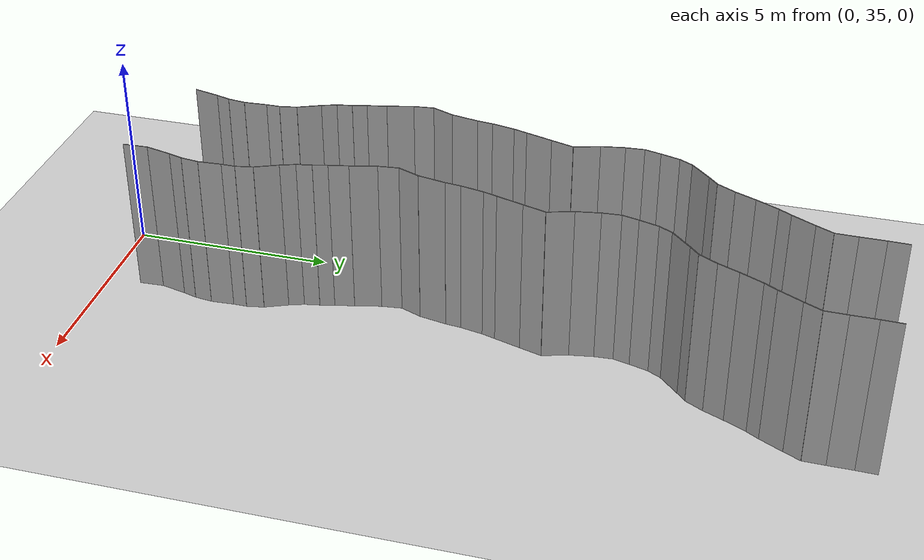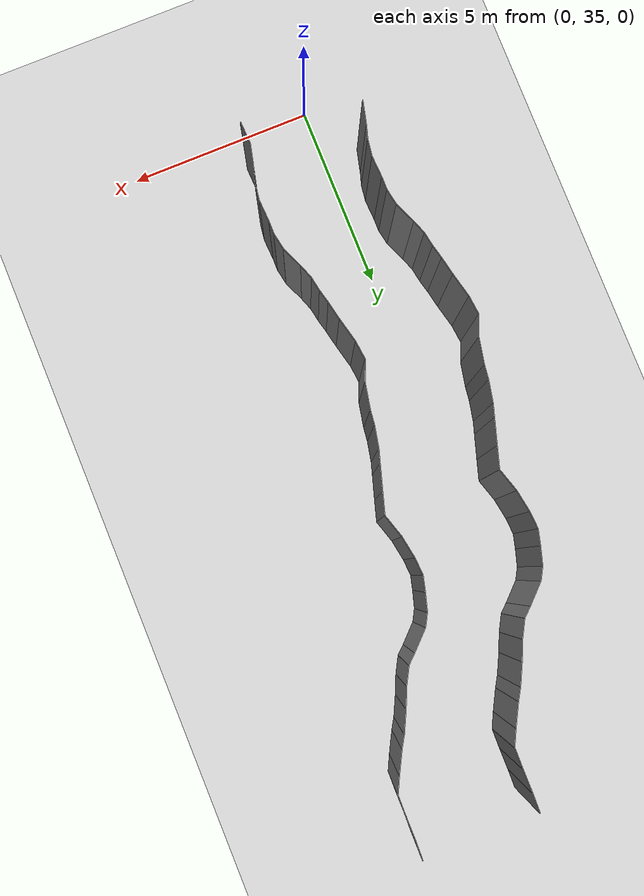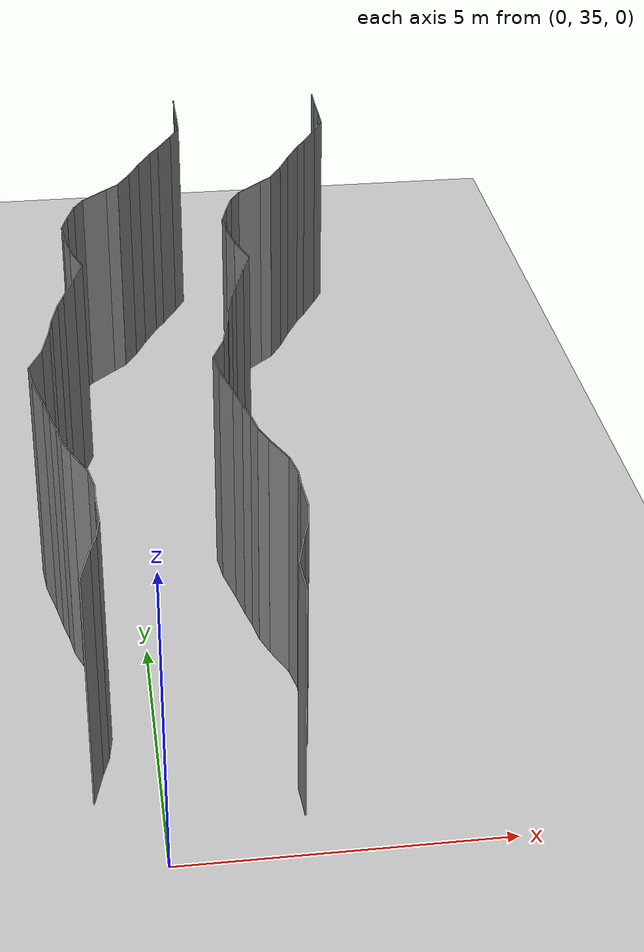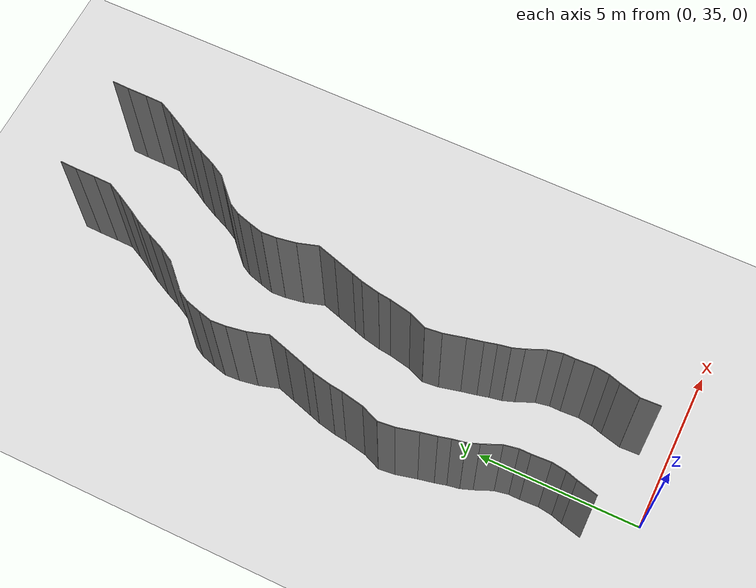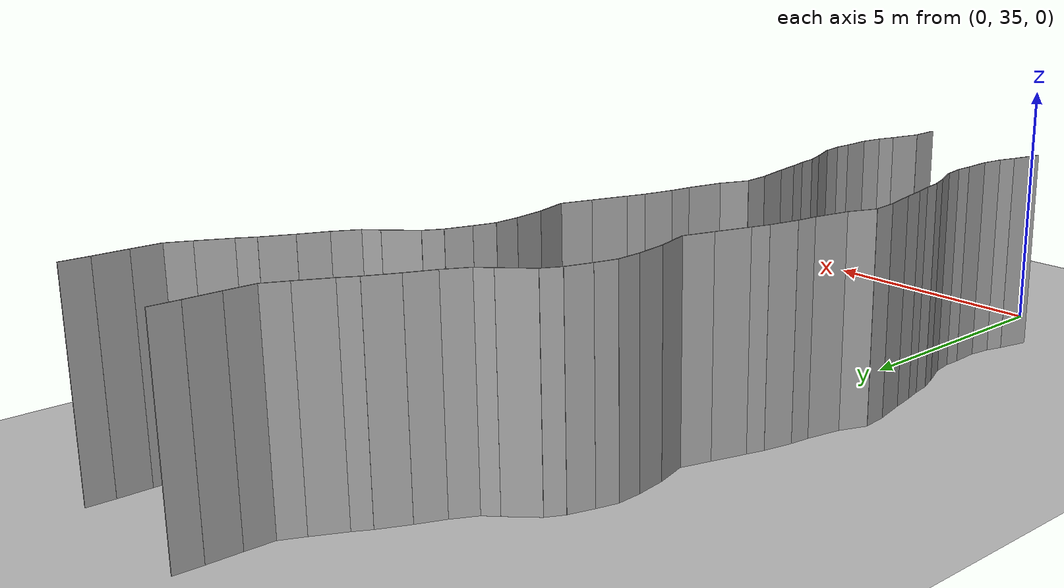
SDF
<sdf version="1.6">
 <world name="default">
  <model name="ground_plane">
   <static>1</static>
   <link name="link">
    <collision name="collision">
     <geometry><plane><normal>0 0 1</normal><size>200 200</size></plane></geometry>
     <surface><friction><ode><mu>100</mu><mu2>50</mu2></ode></friction></surface>
    </collision>
    <visual name="visual">
     <cast_shadows>0</cast_shadows>
     <geometry><plane><normal>0 0 1</normal><size>200 200</size></plane></geometry>
     <material>
      <script><uri>file://media/materials/scripts/gazebo.material</uri><name>Gazebo/Grey</name></script>
     </material>
    </visual>
   </link>
   <pose>0 100 0 0 -0 0</pose>
  </model>
  <model name="wall_149">
   <static>1</static>
   <pose>2.0192433593576036 36.12661065097995 2 0 0 0.039557189646517325</pose>
   <link name="link">
    <collision name="collision"><geometry><box><size>0.02 0.612151581699 4</size></box></geometry></collision>
    <visual name="visual">
     <material>
      <script><name>Gazebo/Grey</name><uri>file://media/materials/scripts/gazebo.material</uri></script>
     </material>
     <geometry><box><size>0.02 0.612151581699 4</size></box></geometry>
    </visual>
   </link>
  </model>
  <model name="wall_150">
   <static>1</static>
   <pose>-0.9142452974517005 36.75041396233746 2 0 0 -0.24238387777023654</pose>
   <link name="link">
    <collision name="collision"><geometry><box><size>0.02 0.655082933728 4</size></box></geometry></collision>
    <visual name="visual">
     <material>
      <script><name>Gazebo/Grey</name><uri>file://media/materials/scripts/gazebo.material</uri></script>
     </material>
     <geometry><box><size>0.02 0.655082933728 4</size></box></geometry>
    </visual>
   </link>
  </model>
  <model name="wall_151">
   <static>1</static>
   <pose>2.0857547025482996 36.75041396233746 2 0 0 -0.24238387777023654</pose>
   <link name="link">
    <collision name="collision"><geometry><box><size>0.02 0.655082933728 4</size></box></geometry></collision>
    <visual name="visual">
     <material>
      <script><name>Gazebo/Grey</name><uri>file://media/materials/scripts/gazebo.material</uri></script>
     </material>
     <geometry><box><size>0.02 0.655082933728 4</size></box></geometry>
    </visual>
   </link>
  </model>
  <model name="wall_152">
   <static>1</static>
   <pose>-0.7836860559475834 37.23986048519469 2 0 0 -0.2941280231674911</pose>
   <link name="link">
    <collision name="collision"><geometry><box><size>0.02 0.358348289426 4</size></box></geometry></collision>
    <visual name="visual">
     <material>
      <script><name>Gazebo/Grey</name><uri>file://media/materials/scripts/gazebo.material</uri></script>
     </material>
     <geometry><box><size>0.02 0.358348289426 4</size></box></geometry>
    </visual>
   </link>
  </model>
  <model name="wall_153">
   <static>1</static>
   <pose>2.2163139440524167 37.23986048519469 2 0 0 -0.2941280231674911</pose>
   <link name="link">
    <collision name="collision"><geometry><box><size>0.02 0.358348289426 4</size></box></geometry></collision>
    <visual name="visual">
     <material>
      <script><name>Gazebo/Grey</name><uri>file://media/materials/scripts/gazebo.material</uri></script>
     </material>
     <geometry><box><size>0.02 0.358348289426 4</size></box></geometry>
    </visual>
   </link>
  </model>
  <model name="wall_154">
   <static>1</static>
   <pose>-0.7006833152699552 37.63214923036254 2 0 0 -0.1397439226278167</pose>
   <link name="link">
    <collision name="collision"><geometry><box><size>0.02 0.445965770991 4</size></box></geometry></collision>
    <visual name="visual">
     <material>
      <script><name>Gazebo/Grey</name><uri>file://media/materials/scripts/gazebo.material</uri></script>
     </material>
     <geometry><box><size>0.02 0.445965770991 4</size></box></geometry>
    </visual>
   </link>
  </model>
  <model name="wall_155">
   <static>1</static>
   <pose>2.299316684730045 37.63214923036254 2 0 0 -0.1397439226278167</pose>
   <link name="link">
    <collision name="collision"><geometry><box><size>0.02 0.445965770991 4</size></box></geometry></collision>
    <visual name="visual">
     <material>
      <script><name>Gazebo/Grey</name><uri>file://media/materials/scripts/gazebo.material</uri></script>
     </material>
     <geometry><box><size>0.02 0.445965770991 4</size></box></geometry>
    </visual>
   </link>
  </model>
  <model name="wall_156">
   <static>1</static>
   <pose>-0.6842774030979801 38.14080958492552 2 0 0 0.050861815035771495</pose>
   <link name="link">
    <collision name="collision"><geometry><box><size>0.02 0.576447800007 4</size></box></geometry></collision>
    <visual name="visual">
     <material>
      <script><name>Gazebo/Grey</name><uri>file://media/materials/scripts/gazebo.material</uri></script>
     </material>
     <geometry><box><size>0.02 0.576447800007 4</size></box></geometry>
    </visual>
   </link>
  </model>
  <model name="wall_157">
   <static>1</static>
   <pose>2.31572259690202 38.14080958492552 2 0 0 0.050861815035771495</pose>
   <link name="link">
    <collision name="collision"><geometry><box><size>0.02 0.576447800007 4</size></box></geometry></collision>
    <visual name="visual">
     <material>
      <script><name>Gazebo/Grey</name><uri>file://media/materials/scripts/gazebo.material</uri></script>
     </material>
     <geometry><box><size>0.02 0.576447800007 4</size></box></geometry>
    </visual>
   </link>
  </model>
  <model name="wall_158">
   <static>1</static>
   <pose>-0.6976962503050346 38.59774978957099 2 0 0 -0.007300306962798818</pose>
   <link name="link">
    <collision name="collision"><geometry><box><size>0.02 0.338187073664 4</size></box></geometry></collision>
    <visual name="visual">
     <material>
      <script><name>Gazebo/Grey</name><uri>file://media/materials/scripts/gazebo.material</uri></script>
     </material>
     <geometry><box><size>0.02 0.338187073664 4</size></box></geometry>
    </visual>
   </link>
  </model>
  <model name="wall_159">
   <static>1</static>
   <pose>2.3023037496949654 38.59774978957099 2 0 0 -0.007300306962798818</pose>
   <link name="link">
    <collision name="collision"><geometry><box><size>0.02 0.338187073664 4</size></box></geometry></collision>
    <visual name="visual">
     <material>
      <script><name>Gazebo/Grey</name><uri>file://media/materials/scripts/gazebo.material</uri></script>
     </material>
     <geometry><box><size>0.02 0.338187073664 4</size></box></geometry>
    </visual>
   </link>
  </model>
  <model name="wall_160">
   <static>1</static>
   <pose>-0.7359153960441842 38.9803949675211 2 0 0 0.18268582352872226</pose>
   <link name="link">
    <collision name="collision"><geometry><box><size>0.02 0.434340014536 4</size></box></geometry></collision>
    <visual name="visual">
     <material>
      <script><name>Gazebo/Grey</name><uri>file://media/materials/scripts/gazebo.material</uri></script>
     </material>
     <geometry><box><size>0.02 0.434340014536 4</size></box></geometry>
    </visual>
   </link>
  </model>
  <model name="wall_161">
   <static>1</static>
   <pose>2.2640846039558156 38.9803949675211 2 0 0 0.18268582352872226</pose>
   <link name="link">
    <collision name="collision"><geometry><box><size>0.02 0.434340014536 4</size></box></geometry></collision>
    <visual name="visual">
     <material>
      <script><name>Gazebo/Grey</name><uri>file://media/materials/scripts/gazebo.material</uri></script>
     </material>
     <geometry><box><size>0.02 0.434340014536 4</size></box></geometry>
    </visual>
   </link>
  </model>
  <model name="wall_162">
   <static>1</static>
   <pose>-0.8949635153603994 39.47143708258466 2 0 0 0.40693592312433097</pose>
   <link name="link">
    <collision name="collision"><geometry><box><size>0.02 0.604322161872 4</size></box></geometry></collision>
    <visual name="visual">
     <material>
      <script><name>Gazebo/Grey</name><uri>file://media/materials/scripts/gazebo.material</uri></script>
     </material>
     <geometry><box><size>0.02 0.604322161872 4</size></box></geometry>
    </visual>
   </link>
  </model>
  <model name="wall_163">
   <static>1</static>
   <pose>2.1050364846396006 39.47143708258466 2 0 0 0.40693592312433097</pose>
   <link name="link">
    <collision name="collision"><geometry><box><size>0.02 0.604322161872 4</size></box></geometry></collision>
    <visual name="visual">
     <material>
      <script><name>Gazebo/Grey</name><uri>file://media/materials/scripts/gazebo.material</uri></script>
     </material>
     <geometry><box><size>0.02 0.604322161872 4</size></box></geometry>
    </visual>
   </link>
  </model>
  <model name="wall_164">
   <static>1</static>
   <pose>-1.0796892543624659 39.930081267699144 2 0 0 0.3451363887098022</pose>
   <link name="link">
    <collision name="collision"><geometry><box><size>0.02 0.385021409277 4</size></box></geometry></collision>
    <visual name="visual">
     <material>
      <script><name>Gazebo/Grey</name><uri>file://media/materials/scripts/gazebo.material</uri></script>
     </material>
     <geometry><box><size>0.02 0.385021409277 4</size></box></geometry>
    </visual>
   </link>
  </model>
  <model name="wall_165">
   <static>1</static>
   <pose>1.9203107456375341 39.930081267699144 2 0 0 0.3451363887098022</pose>
   <link name="link">
    <collision name="collision"><geometry><box><size>0.02 0.385021409277 4</size></box></geometry></collision>
    <visual name="visual">
     <material>
      <script><name>Gazebo/Grey</name><uri>file://media/materials/scripts/gazebo.material</uri></script>
     </material>
     <geometry><box><size>0.02 0.385021409277 4</size></box></geometry>
    </visual>
   </link>
  </model>
  <model name="wall_166">
   <static>1</static>
   <pose>-1.1790726796468258 40.30030731999518 2 0 0 0.17921992695728503</pose>
   <link name="link">
    <collision name="collision"><geometry><box><size>0.02 0.384290837839 4</size></box></geometry></collision>
    <visual name="visual">
     <material>
      <script><name>Gazebo/Grey</name><uri>file://media/materials/scripts/gazebo.material</uri></script>
     </material>
     <geometry><box><size>0.02 0.384290837839 4</size></box></geometry>
    </visual>
   </link>
  </model>
  <model name="wall_167">
   <static>1</static>
   <pose>1.8209273203531742 40.30030731999518 2 0 0 0.17921992695728503</pose>
   <link name="link">
    <collision name="collision"><geometry><box><size>0.02 0.384290837839 4</size></box></geometry></collision>
    <visual name="visual">
     <material>
      <script><name>Gazebo/Grey</name><uri>file://media/materials/scripts/gazebo.material</uri></script>
     </material>
     <geometry><box><size>0.02 0.384290837839 4</size></box></geometry>
    </visual>
   </link>
  </model>
  <model name="wall_168">
   <static>1</static>
   <pose>-1.258138026906627 40.66767501821733 2 0 0 0.2462353457118557</pose>
   <link name="link">
    <collision name="collision"><geometry><box><size>0.02 0.367690391826 4</size></box></geometry></collision>
    <visual name="visual">
     <material>
      <script><name>Gazebo/Grey</name><uri>file://media/materials/scripts/gazebo.material</uri></script>
     </material>
     <geometry><box><size>0.02 0.367690391826 4</size></box></geometry>
    </visual>
   </link>
  </model>
  <model name="wall_169">
   <static>1</static>
   <pose>1.741861973093373 40.66767501821733 2 0 0 0.2462353457118557</pose>
   <link name="link">
    <collision name="collision"><geometry><box><size>0.02 0.367690391826 4</size></box></geometry></collision>
    <visual name="visual">
     <material>
      <script><name>Gazebo/Grey</name><uri>file://media/materials/scripts/gazebo.material</uri></script>
     </material>
     <geometry><box><size>0.02 0.367690391826 4</size></box></geometry>
    </visual>
   </link>
  </model>
  <model name="wall_170">
   <static>1</static>
   <pose>-1.3530703165309805 41.08619606670605 2 0 0 0.20568700875479912</pose>
   <link name="link">
    <collision name="collision"><geometry><box><size>0.02 0.490787734284 4</size></box></geometry></collision>
    <visual name="visual">
     <material>
      <script><name>Gazebo/Grey</name><uri>file://media/materials/scripts/gazebo.material</uri></script>
     </material>
     <geometry><box><size>0.02 0.490787734284 4</size></box></geometry>
    </visual>
   </link>
  </model>
  <model name="wall_171">
   <static>1</static>
   <pose>1.6469296834690195 41.08619606670605 2 0 0 0.20568700875479912</pose>
   <link name="link">
    <collision name="collision"><geometry><box><size>0.02 0.490787734284 4</size></box></geometry></collision>
    <visual name="visual">
     <material>
      <script><name>Gazebo/Grey</name><uri>file://media/materials/scripts/gazebo.material</uri></script>
     </material>
     <geometry><box><size>0.02 0.490787734284 4</size></box></geometry>
    </visual>
   </link>
  </model>
  <model name="wall_172">
   <static>1</static>
   <pose>-1.4822522271594232 41.65269254033354 2 0 0 0.23773661303787055</pose>
   <link name="link">
    <collision name="collision"><geometry><box><size>0.02 0.671435713187 4</size></box></geometry></collision>
    <visual name="visual">
     <material>
      <script><name>Gazebo/Grey</name><uri>file://media/materials/scripts/gazebo.material</uri></script>
     </material>
     <geometry><box><size>0.02 0.671435713187 4</size></box></geometry>
    </visual>
   </link>
  </model>
  <model name="wall_173">
   <static>1</static>
   <pose>1.5177477728405768 41.65269254033354 2 0 0 0.23773661303787055</pose>
   <link name="link">
    <collision name="collision"><geometry><box><size>0.02 0.671435713187 4</size></box></geometry></collision>
    <visual name="visual">
     <material>
      <script><name>Gazebo/Grey</name><uri>file://media/materials/scripts/gazebo.material</uri></script>
     </material>
     <geometry><box><size>0.02 0.671435713187 4</size></box></geometry>
    </visual>
   </link>
  </model>
  <model name="wall_174">
   <static>1</static>
   <pose>-1.5881222332345402 42.23025512956287 2 0 0 0.10627782832516085</pose>
   <link name="link">
    <collision name="collision"><geometry><box><size>0.02 0.505426305799 4</size></box></geometry></collision>
    <visual name="visual">
     <material>
      <script><name>Gazebo/Grey</name><uri>file://media/materials/scripts/gazebo.material</uri></script>
     </material>
     <geometry><box><size>0.02 0.505426305799 4</size></box></geometry>
    </visual>
   </link>
  </model>
  <model name="wall_175">
   <static>1</static>
   <pose>1.4118777667654598 42.23025512956287 2 0 0 0.10627782832516085</pose>
   <link name="link">
    <collision name="collision"><geometry><box><size>0.02 0.505426305799 4</size></box></geometry></collision>
    <visual name="visual">
     <material>
      <script><name>Gazebo/Grey</name><uri>file://media/materials/scripts/gazebo.material</uri></script>
     </material>
     <geometry><box><size>0.02 0.505426305799 4</size></box></geometry>
    </visual>
   </link>
  </model>
  <model name="wall_176">
   <static>1</static>
   <pose>-1.5063852420950892 42.74527373560335 2 0 0 -0.3904417588533653</pose>
   <link name="link">
    <collision name="collision"><geometry><box><size>0.02 0.570389546399 4</size></box></geometry></collision>
    <visual name="visual">
     <material>
      <script><name>Gazebo/Grey</name><uri>file://media/materials/scripts/gazebo.material</uri></script>
     </material>
     <geometry><box><size>0.02 0.570389546399 4</size></box></geometry>
    </visual>
   </link>
  </model>
  <model name="wall_177">
   <static>1</static>
   <pose>1.4936147579049108 42.74527373560335 2 0 0 -0.3904417588533653</pose>
   <link name="link">
    <collision name="collision"><geometry><box><size>0.02 0.570389546399 4</size></box></geometry></collision>
    <visual name="visual">
     <material>
      <script><name>Gazebo/Grey</name><uri>file://media/materials/scripts/gazebo.material</uri></script>
     </material>
     <geometry><box><size>0.02 0.570389546399 4</size></box></geometry>
    </visual>
   </link>
  </model>
  <model name="wall_178">
   <static>1</static>
   <pose>-1.3299842624701264 43.35047527671578 2 0 0 -0.1961637817364554</pose>
   <link name="link">
    <collision name="collision"><geometry><box><size>0.02 0.696294351351 4</size></box></geometry></collision>
    <visual name="visual">
     <material>
      <script><name>Gazebo/Grey</name><uri>file://media/materials/scripts/gazebo.material</uri></script>
     </material>
     <geometry><box><size>0.02 0.696294351351 4</size></box></geometry>
    </visual>
   </link>
  </model>
  <model name="wall_179">
   <static>1</static>
   <pose>1.6700157375298736 43.35047527671578 2 0 0 -0.1961637817364554</pose>
   <link name="link">
    <collision name="collision"><geometry><box><size>0.02 0.696294351351 4</size></box></geometry></collision>
    <visual name="visual">
     <material>
      <script><name>Gazebo/Grey</name><uri>file://media/materials/scripts/gazebo.material</uri></script>
     </material>
     <geometry><box><size>0.02 0.696294351351 4</size></box></geometry>
    </visual>
   </link>
  </model>
  <model name="wall_180">
   <static>1</static>
   <pose>-1.239160466446554 43.88385552369766 2 0 0 -0.11910981625085444</pose>
   <link name="link">
    <collision name="collision"><geometry><box><size>0.02 0.386558865191 4</size></box></geometry></collision>
    <visual name="visual">
     <material>
      <script><name>Gazebo/Grey</name><uri>file://media/materials/scripts/gazebo.material</uri></script>
     </material>
     <geometry><box><size>0.02 0.386558865191 4</size></box></geometry>
    </visual>
   </link>
  </model>
  <model name="wall_181">
   <static>1</static>
   <pose>1.760839533553446 43.88385552369766 2 0 0 -0.11910981625085444</pose>
   <link name="link">
    <collision name="collision"><geometry><box><size>0.02 0.386558865191 4</size></box></geometry></collision>
    <visual name="visual">
     <material>
      <script><name>Gazebo/Grey</name><uri>file://media/materials/scripts/gazebo.material</uri></script>
     </material>
     <geometry><box><size>0.02 0.386558865191 4</size></box></geometry>
    </visual>
   </link>
  </model>
  <model name="wall_182">
   <static>1</static>
   <pose>-1.1572454723998697 44.36001333714651 2 0 0 -0.20448357314298446</pose>
   <link name="link">
    <collision name="collision"><geometry><box><size>0.02 0.580591662795 4</size></box></geometry></collision>
    <visual name="visual">
     <material>
      <script><name>Gazebo/Grey</name><uri>file://media/materials/scripts/gazebo.material</uri></script>
     </material>
     <geometry><box><size>0.02 0.580591662795 4</size></box></geometry>
    </visual>
   </link>
  </model>
  <model name="wall_183">
   <static>1</static>
   <pose>1.8427545276001303 44.36001333714651 2 0 0 -0.20448357314298446</pose>
   <link name="link">
    <collision name="collision"><geometry><box><size>0.02 0.580591662795 4</size></box></geometry></collision>
    <visual name="visual">
     <material>
      <script><name>Gazebo/Grey</name><uri>file://media/materials/scripts/gazebo.material</uri></script>
     </material>
     <geometry><box><size>0.02 0.580591662795 4</size></box></geometry>
    </visual>
   </link>
  </model>
  <model name="wall_184">
   <static>1</static>
   <pose>-1.0467105979649969 44.81242326293628 2 0 0 -0.29765545168526164</pose>
   <link name="link">
    <collision name="collision"><geometry><box><size>0.02 0.35179377073 4</size></box></geometry></collision>
    <visual name="visual">
     <material>
      <script><name>Gazebo/Grey</name><uri>file://media/materials/scripts/gazebo.material</uri></script>
     </material>
     <geometry><box><size>0.02 0.35179377073 4</size></box></geometry>
    </visual>
   </link>
  </model>
  <model name="wall_185">
   <static>1</static>
   <pose>1.9532894020350031 44.81242326293628 2 0 0 -0.29765545168526164</pose>
   <link name="link">
    <collision name="collision"><geometry><box><size>0.02 0.35179377073 4</size></box></geometry></collision>
    <visual name="visual">
     <material>
      <script><name>Gazebo/Grey</name><uri>file://media/materials/scripts/gazebo.material</uri></script>
     </material>
     <geometry><box><size>0.02 0.35179377073 4</size></box></geometry>
    </visual>
   </link>
  </model>
  <model name="wall_186">
   <static>1</static>
   <pose>-0.8949282345790525 45.30904628388181 2 0 0 -0.29607891492868527</pose>
   <link name="link">
    <collision name="collision"><geometry><box><size>0.02 0.686806173232 4</size></box></geometry></collision>
    <visual name="visual">
     <material>
      <script><name>Gazebo/Grey</name><uri>file://media/materials/scripts/gazebo.material</uri></script>
     </material>
     <geometry><box><size>0.02 0.686806173232 4</size></box></geometry>
    </visual>
   </link>
  </model>
  <model name="wall_187">
   <static>1</static>
   <pose>2.1050717654209476 45.30904628388181 2 0 0 -0.29607891492868527</pose>
   <link name="link">
    <collision name="collision"><geometry><box><size>0.02 0.686806173232 4</size></box></geometry></collision>
    <visual name="visual">
     <material>
      <script><name>Gazebo/Grey</name><uri>file://media/materials/scripts/gazebo.material</uri></script>
     </material>
     <geometry><box><size>0.02 0.686806173232 4</size></box></geometry>
    </visual>
   </link>
  </model>
  <model name="wall_188">
   <static>1</static>
   <pose>-0.7104861129719291 45.91787787526945 2 0 0 -0.291900158878294</pose>
   <link name="link">
    <collision name="collision"><geometry><box><size>0.02 0.58550913108 4</size></box></geometry></collision>
    <visual name="visual">
     <material>
      <script><name>Gazebo/Grey</name><uri>file://media/materials/scripts/gazebo.material</uri></script>
     </material>
     <geometry><box><size>0.02 0.58550913108 4</size></box></geometry>
    </visual>
   </link>
  </model>
  <model name="wall_189">
   <static>1</static>
   <pose>2.289513887028071 45.91787787526945 2 0 0 -0.291900158878294</pose>
   <link name="link">
    <collision name="collision"><geometry><box><size>0.02 0.58550913108 4</size></box></geometry></collision>
    <visual name="visual">
     <material>
      <script><name>Gazebo/Grey</name><uri>file://media/materials/scripts/gazebo.material</uri></script>
     </material>
     <geometry><box><size>0.02 0.58550913108 4</size></box></geometry>
    </visual>
   </link>
  </model>
  <model name="wall_190">
   <static>1</static>
   <pose>-0.7214859873936521 46.50879880992772 2 0 0 0.2975946516114795</pose>
   <link name="link">
    <collision name="collision"><geometry><box><size>0.02 0.649656419995 4</size></box></geometry></collision>
    <visual name="visual">
     <material>
      <script><name>Gazebo/Grey</name><uri>file://media/materials/scripts/gazebo.material</uri></script>
     </material>
     <geometry><box><size>0.02 0.649656419995 4</size></box></geometry>
    </visual>
   </link>
  </model>
  <model name="wall_191">
   <static>1</static>
   <pose>2.278514012606348 46.50879880992772 2 0 0 0.2975946516114795</pose>
   <link name="link">
    <collision name="collision"><geometry><box><size>0.02 0.649656419995 4</size></box></geometry></collision>
    <visual name="visual">
     <material>
      <script><name>Gazebo/Grey</name><uri>file://media/materials/scripts/gazebo.material</uri></script>
     </material>
     <geometry><box><size>0.02 0.649656419995 4</size></box></geometry>
    </visual>
   </link>
  </model>
  <model name="wall_192">
   <static>1</static>
   <pose>-0.8651848595774441 47.11142225094223 2 0 0 0.1643937549513063</pose>
   <link name="link">
    <collision name="collision"><geometry><box><size>0.02 0.592129638915 4</size></box></geometry></collision>
    <visual name="visual">
     <material>
      <script><name>Gazebo/Grey</name><uri>file://media/materials/scripts/gazebo.material</uri></script>
     </material>
     <geometry><box><size>0.02 0.592129638915 4</size></box></geometry>
    </visual>
   </link>
  </model>
  <model name="wall_193">
   <static>1</static>
   <pose>2.134815140422556 47.11142225094223 2 0 0 0.1643937549513063</pose>
   <link name="link">
    <collision name="collision"><geometry><box><size>0.02 0.592129638915 4</size></box></geometry></collision>
    <visual name="visual">
     <material>
      <script><name>Gazebo/Grey</name><uri>file://media/materials/scripts/gazebo.material</uri></script>
     </material>
     <geometry><box><size>0.02 0.592129638915 4</size></box></geometry>
    </visual>
   </link>
  </model>
  <model name="wall_194">
   <static>1</static>
   <pose>-0.9272226549811876 47.632808463098094 2 0 0 0.05917525719488259</pose>
   <link name="link">
    <collision name="collision"><geometry><box><size>0.02 0.459430185671 4</size></box></geometry></collision>
    <visual name="visual">
     <material>
      <script><name>Gazebo/Grey</name><uri>file://media/materials/scripts/gazebo.material</uri></script>
     </material>
     <geometry><box><size>0.02 0.459430185671 4</size></box></geometry>
    </visual>
   </link>
  </model>
  <model name="wall_195">
   <static>1</static>
   <pose>2.0727773450188125 47.632808463098094 2 0 0 0.05917525719488259</pose>
   <link name="link">
    <collision name="collision"><geometry><box><size>0.02 0.459430185671 4</size></box></geometry></collision>
    <visual name="visual">
     <material>
      <script><name>Gazebo/Grey</name><uri>file://media/materials/scripts/gazebo.material</uri></script>
     </material>
     <geometry><box><size>0.02 0.459430185671 4</size></box></geometry>
    </visual>
   </link>
  </model>
  <model name="wall_196">
   <static>1</static>
   <pose>-0.8890327732973499 48.06315812022171 2 0 0 -0.252064415455184</pose>
   <link name="link">
    <collision name="collision"><geometry><box><size>0.02 0.41519356722 4</size></box></geometry></collision>
    <visual name="visual">
     <material>
      <script><name>Gazebo/Grey</name><uri>file://media/materials/scripts/gazebo.material</uri></script>
     </material>
     <geometry><box><size>0.02 0.41519356722 4</size></box></geometry>
    </visual>
   </link>
  </model>
  <model name="wall_197">
   <static>1</static>
   <pose>2.11096722670265 48.06315812022171 2 0 0 -0.252064415455184</pose>
   <link name="link">
    <collision name="collision"><geometry><box><size>0.02 0.41519356722 4</size></box></geometry></collision>
    <visual name="visual">
     <material>
      <script><name>Gazebo/Grey</name><uri>file://media/materials/scripts/gazebo.material</uri></script>
     </material>
     <geometry><box><size>0.02 0.41519356722 4</size></box></geometry>
    </visual>
   </link>
  </model>
  <model name="wall_198">
   <static>1</static>
   <pose>-0.7677498701748449 48.49946676548275 2 0 0 -0.287263165512431</pose>
   <link name="link">
    <collision name="collision"><geometry><box><size>0.02 0.49064939515 4</size></box></geometry></collision>
    <visual name="visual">
     <material>
      <script><name>Gazebo/Grey</name><uri>file://media/materials/scripts/gazebo.material</uri></script>
     </material>
     <geometry><box><size>0.02 0.49064939515 4</size></box></geometry>
    </visual>
   </link>
  </model>
  <model name="wall_199">
   <static>1</static>
   <pose>2.232250129825155 48.49946676548275 2 0 0 -0.287263165512431</pose>
   <link name="link">
    <collision name="collision"><geometry><box><size>0.02 0.49064939515 4</size></box></geometry></collision>
    <visual name="visual">
     <material>
      <script><name>Gazebo/Grey</name><uri>file://media/materials/scripts/gazebo.material</uri></script>
     </material>
     <geometry><box><size>0.02 0.49064939515 4</size></box></geometry>
    </visual>
   </link>
  </model>
  <model name="wall_200">
   <static>1</static>
   <pose>-0.6101449960645067 48.89423797565199 2 0 0 -0.504635947815884</pose>
   <link name="link">
    <collision name="collision"><geometry><box><size>0.02 0.364423624859 4</size></box></geometry></collision>
    <visual name="visual">
     <material>
      <script><name>Gazebo/Grey</name><uri>file://media/materials/scripts/gazebo.material</uri></script>
     </material>
     <geometry><box><size>0.02 0.364423624859 4</size></box></geometry>
    </visual>
   </link>
  </model>
  <model name="wall_201">
   <static>1</static>
   <pose>2.3898550039354935 48.89423797565199 2 0 0 -0.504635947815884</pose>
   <link name="link">
    <collision name="collision"><geometry><box><size>0.02 0.364423624859 4</size></box></geometry></collision>
    <visual name="visual">
     <material>
      <script><name>Gazebo/Grey</name><uri>file://media/materials/scripts/gazebo.material</uri></script>
     </material>
     <geometry><box><size>0.02 0.364423624859 4</size></box></geometry>
    </visual>
   </link>
  </model>
  <model name="wall_202">
   <static>1</static>
   <pose>-0.28739285339394827 49.28481611641763 2 0 0 -0.7930758792931155</pose>
   <link name="link">
    <collision name="collision"><geometry><box><size>0.02 0.658666332843 4</size></box></geometry></collision>
    <visual name="visual">
     <material>
      <script><name>Gazebo/Grey</name><uri>file://media/materials/scripts/gazebo.material</uri></script>
     </material>
     <geometry><box><size>0.02 0.658666332843 4</size></box></geometry>
    </visual>
   </link>
  </model>
  <model name="wall_203">
   <static>1</static>
   <pose>2.712607146606052 49.28481611641763 2 0 0 -0.7930758792931155</pose>
   <link name="link">
    <collision name="collision"><geometry><box><size>0.02 0.658666332843 4</size></box></geometry></collision>
    <visual name="visual">
     <material>
      <script><name>Gazebo/Grey</name><uri>file://media/materials/scripts/gazebo.material</uri></script>
     </material>
     <geometry><box><size>0.02 0.658666332843 4</size></box></geometry>
    </visual>
   </link>
  </model>
  <model name="wall_204">
   <static>1</static>
   <pose>0.0643868693692362 49.62338352182437 2 0 0 -0.8282743636360722</pose>
   <link name="link">
    <collision name="collision"><geometry><box><size>0.02 0.31794355572 4</size></box></geometry></collision>
    <visual name="visual">
     <material>
      <script><name>Gazebo/Grey</name><uri>file://media/materials/scripts/gazebo.material</uri></script>
     </material>
     <geometry><box><size>0.02 0.31794355572 4</size></box></geometry>
    </visual>
   </link>
  </model>
  <model name="wall_205">
   <static>1</static>
   <pose>3.064386869369236 49.62338352182437 2 0 0 -0.8282743636360722</pose>
   <link name="link">
    <collision name="collision"><geometry><box><size>0.02 0.31794355572 4</size></box></geometry></collision>
    <visual name="visual">
     <material>
      <script><name>Gazebo/Grey</name><uri>file://media/materials/scripts/gazebo.material</uri></script>
     </material>
     <geometry><box><size>0.02 0.31794355572 4</size></box></geometry>
    </visual>
   </link>
  </model>
  <model name="wall_206">
   <static>1</static>
   <pose>0.30236109682483203 49.94954529478165 2 0 0 -0.504873656288127</pose>
   <link name="link">
    <collision name="collision"><geometry><box><size>0.02 0.499690140945 4</size></box></geometry></collision>
    <visual name="visual">
     <material>
      <script><name>Gazebo/Grey</name><uri>file://media/materials/scripts/gazebo.material</uri></script>
     </material>
     <geometry><box><size>0.02 0.499690140945 4</size></box></geometry>
    </visual>
   </link>
  </model>
  <model name="wall_207">
   <static>1</static>
   <pose>3.302361096824832 49.94954529478165 2 0 0 -0.504873656288127</pose>
   <link name="link">
    <collision name="collision"><geometry><box><size>0.02 0.499690140945 4</size></box></geometry></collision>
    <visual name="visual">
     <material>
      <script><name>Gazebo/Grey</name><uri>file://media/materials/scripts/gazebo.material</uri></script>
     </material>
     <geometry><box><size>0.02 0.499690140945 4</size></box></geometry>
    </visual>
   </link>
  </model>
  <model name="wall_208">
   <static>1</static>
   <pose>0.531564741802776 50.415804168217846 2 0 0 -0.4125313910915789</pose>
   <link name="link">
    <collision name="collision"><geometry><box><size>0.02 0.540515627761 4</size></box></geometry></collision>
    <visual name="visual">
     <material>
      <script><name>Gazebo/Grey</name><uri>file://media/materials/scripts/gazebo.material</uri></script>
     </material>
     <geometry><box><size>0.02 0.540515627761 4</size></box></geometry>
    </visual>
   </link>
  </model>
  <model name="wall_209">
   <static>1</static>
   <pose>3.531564741802776 50.415804168217846 2 0 0 -0.4125313910915789</pose>
   <link name="link">
    <collision name="collision"><geometry><box><size>0.02 0.540515627761 4</size></box></geometry></collision>
    <visual name="visual">
     <material>
      <script><name>Gazebo/Grey</name><uri>file://media/materials/scripts/gazebo.material</uri></script>
     </material>
     <geometry><box><size>0.02 0.540515627761 4</size></box></geometry>
    </visual>
   </link>
  </model>
  <model name="wall_210">
   <static>1</static>
   <pose>0.7716901971962397 50.93307862405126 2 0 0 -0.45448938087915464</pose>
   <link name="link">
    <collision name="collision"><geometry><box><size>0.02 0.60031895513 4</size></box></geometry></collision>
    <visual name="visual">
     <material>
      <script><name>Gazebo/Grey</name><uri>file://media/materials/scripts/gazebo.material</uri></script>
     </material>
     <geometry><box><size>0.02 0.60031895513 4</size></box></geometry>
    </visual>
   </link>
  </model>
  <model name="wall_211">
   <static>1</static>
   <pose>3.7716901971962398 50.93307862405126 2 0 0 -0.45448938087915464</pose>
   <link name="link">
    <collision name="collision"><geometry><box><size>0.02 0.60031895513 4</size></box></geometry></collision>
    <visual name="visual">
     <material>
      <script><name>Gazebo/Grey</name><uri>file://media/materials/scripts/gazebo.material</uri></script>
     </material>
     <geometry><box><size>0.02 0.60031895513 4</size></box></geometry>
    </visual>
   </link>
  </model>
  <model name="wall_212">
   <static>1</static>
   <pose>0.9919907736027705 51.350163290599255 2 0 0 -0.5408784101724347</pose>
   <link name="link">
    <collision name="collision"><geometry><box><size>0.02 0.34387781575 4</size></box></geometry></collision>
    <visual name="visual">
     <material>
      <script><name>Gazebo/Grey</name><uri>file://media/materials/scripts/gazebo.material</uri></script>
     </material>
     <geometry><box><size>0.02 0.34387781575 4</size></box></geometry>
    </visual>
   </link>
  </model>
  <model name="wall_213">
   <static>1</static>
   <pose>3.9919907736027707 51.350163290599255 2 0 0 -0.5408784101724347</pose>
   <link name="link">
    <collision name="collision"><geometry><box><size>0.02 0.34387781575 4</size></box></geometry></collision>
    <visual name="visual">
     <material>
      <script><name>Gazebo/Grey</name><uri>file://media/materials/scripts/gazebo.material</uri></script>
     </material>
     <geometry><box><size>0.02 0.34387781575 4</size></box></geometry>
    </visual>
   </link>
  </model>
  <model name="wall_214">
   <static>1</static>
   <pose>1.2288569423895928 51.77776525205504 2 0 0 -0.4868775829833141</pose>
   <link name="link">
    <collision name="collision"><geometry><box><size>0.02 0.634095486647 4</size></box></geometry></collision>
    <visual name="visual">
     <material>
      <script><name>Gazebo/Grey</name><uri>file://media/materials/scripts/gazebo.material</uri></script>
     </material>
     <geometry><box><size>0.02 0.634095486647 4</size></box></geometry>
    </visual>
   </link>
  </model>
  <model name="wall_215">
   <static>1</static>
   <pose>4.2288569423895925 51.77776525205504 2 0 0 -0.4868775829833141</pose>
   <link name="link">
    <collision name="collision"><geometry><box><size>0.02 0.634095486647 4</size></box></geometry></collision>
    <visual name="visual">
     <material>
      <script><name>Gazebo/Grey</name><uri>file://media/materials/scripts/gazebo.material</uri></script>
     </material>
     <geometry><box><size>0.02 0.634095486647 4</size></box></geometry>
    </visual>
   </link>
  </model>
  <model name="wall_216">
   <static>1</static>
   <pose>1.4788444218462176 52.26275661558182 2 0 0 -0.46074556921854803</pose>
   <link name="link">
    <collision name="collision"><geometry><box><size>0.02 0.457252045032 4</size></box></geometry></collision>
    <visual name="visual">
     <material>
      <script><name>Gazebo/Grey</name><uri>file://media/materials/scripts/gazebo.material</uri></script>
     </material>
     <geometry><box><size>0.02 0.457252045032 4</size></box></geometry>
    </visual>
   </link>
  </model>
  <model name="wall_217">
   <static>1</static>
   <pose>4.478844421846217 52.26275661558182 2 0 0 -0.46074556921854803</pose>
   <link name="link">
    <collision name="collision"><geometry><box><size>0.02 0.457252045032 4</size></box></geometry></collision>
    <visual name="visual">
     <material>
      <script><name>Gazebo/Grey</name><uri>file://media/materials/scripts/gazebo.material</uri></script>
     </material>
     <geometry><box><size>0.02 0.457252045032 4</size></box></geometry>
    </visual>
   </link>
  </model>
  <model name="wall_218">
   <static>1</static>
   <pose>1.585672300296477 52.73460603567962 2 0 0 -0.019382717006531894</pose>
   <link name="link">
    <collision name="collision"><geometry><box><size>0.02 0.534228813807 4</size></box></geometry></collision>
    <visual name="visual">
     <material>
      <script><name>Gazebo/Grey</name><uri>file://media/materials/scripts/gazebo.material</uri></script>
     </material>
     <geometry><box><size>0.02 0.534228813807 4</size></box></geometry>
    </visual>
   </link>
  </model>
  <model name="wall_219">
   <static>1</static>
   <pose>4.585672300296477 52.73460603567962 2 0 0 -0.019382717006531894</pose>
   <link name="link">
    <collision name="collision"><geometry><box><size>0.02 0.534228813807 4</size></box></geometry></collision>
    <visual name="visual">
     <material>
      <script><name>Gazebo/Grey</name><uri>file://media/materials/scripts/gazebo.material</uri></script>
     </material>
     <geometry><box><size>0.02 0.534228813807 4</size></box></geometry>
    </visual>
   </link>
  </model>
  <model name="wall_220">
   <static>1</static>
   <pose>1.5916515386799077 53.30632966323038 2 0 0 -0.0026329657379068052</pose>
   <link name="link">
    <collision name="collision"><geometry><box><size>0.02 0.609320902349 4</size></box></geometry></collision>
    <visual name="visual">
     <material>
      <script><name>Gazebo/Grey</name><uri>file://media/materials/scripts/gazebo.material</uri></script>
     </material>
     <geometry><box><size>0.02 0.609320902349 4</size></box></geometry>
    </visual>
   </link>
  </model>
  <model name="wall_221">
   <static>1</static>
   <pose>4.5916515386799075 53.30632966323038 2 0 0 -0.0026329657379068052</pose>
   <link name="link">
    <collision name="collision"><geometry><box><size>0.02 0.609320902349 4</size></box></geometry></collision>
    <visual name="visual">
     <material>
      <script><name>Gazebo/Grey</name><uri>file://media/materials/scripts/gazebo.material</uri></script>
     </material>
     <geometry><box><size>0.02 0.609320902349 4</size></box></geometry>
    </visual>
   </link>
  </model>
  <model name="wall_222">
   <static>1</static>
   <pose>1.5999265098438757 53.86323414628343 2 0 0 -0.02961653920080285</pose>
   <link name="link">
    <collision name="collision"><geometry><box><size>0.02 0.504711510812 4</size></box></geometry></collision>
    <visual name="visual">
     <material>
      <script><name>Gazebo/Grey</name><uri>file://media/materials/scripts/gazebo.material</uri></script>
     </material>
     <geometry><box><size>0.02 0.504711510812 4</size></box></geometry>
    </visual>
   </link>
  </model>
  <model name="wall_223">
   <static>1</static>
   <pose>4.5999265098438755 53.86323414628343 2 0 0 -0.02961653920080285</pose>
   <link name="link">
    <collision name="collision"><geometry><box><size>0.02 0.504711510812 4</size></box></geometry></collision>
    <visual name="visual">
     <material>
      <script><name>Gazebo/Grey</name><uri>file://media/materials/scripts/gazebo.material</uri></script>
     </material>
     <geometry><box><size>0.02 0.504711510812 4</size></box></geometry>
    </visual>
   </link>
  </model>
 </world>
</sdf>
